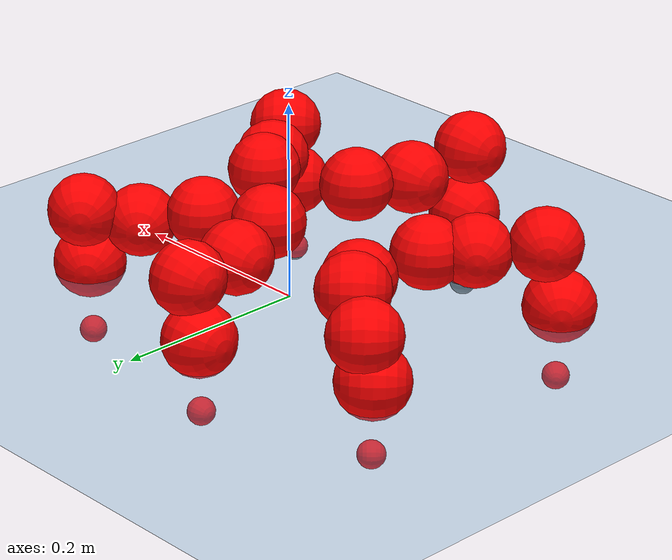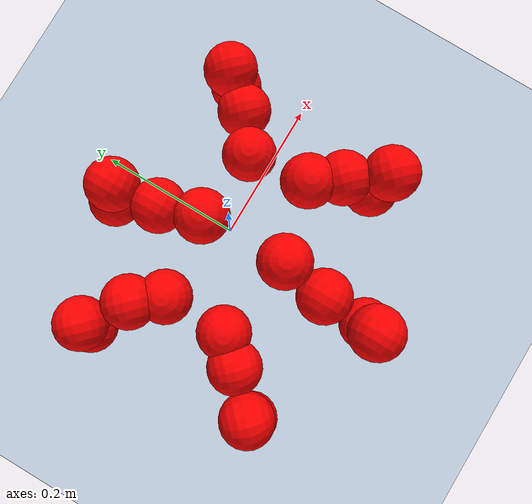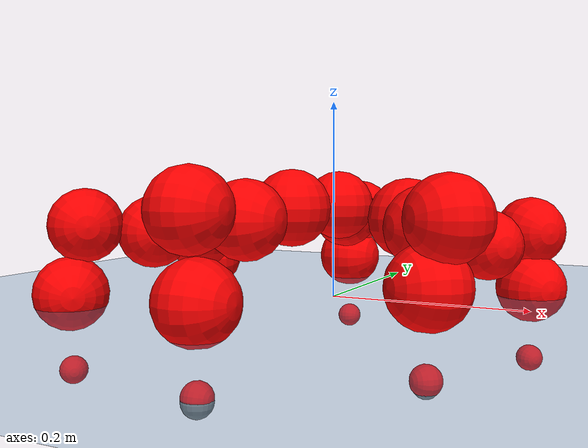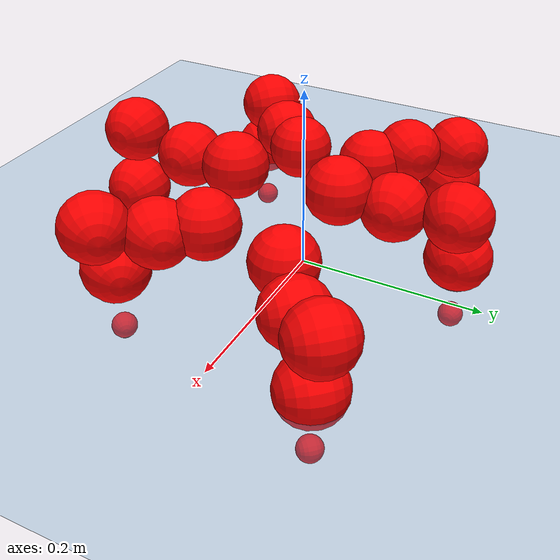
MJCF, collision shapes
<mujoco model="Golem">
  <compiler angle="radian" assetdir="assets" balanceinertia="true" inertiafromgeom="false"/>

  <option timestep="0.005" density="1.2" viscosity="2e-05"/>

  <size nkey="1"/>

  <visual>
    <quality shadowsize="8192"/>
    <map shadowclip="0.5"/>
  </visual>

  <default>
    <default class="/">
      <joint armature="0.01" damping="0.01" frictionloss="0.01"/>
      <geom contype="0" conaffinity="0" group="1" solref="-1000 -80"/>
      <site size="0.01 0.005 0.005" group="5"/>
      <general forcelimited="true" biastype="affine" gainprm="25" biasprm="0 -25 -0.5"/>
      <default class="visual">
        <geom type="mesh" group="2"/>
      </default>
      <default class="collision">
        <geom group="3"/>
      </default>
      <default class="foot">
        <geom size="0.01 0 0" condim="6" group="4" priority="1" solimp="0.015 1 0.01"/>
      </default>
      <default class="reward_collision_sphere">
        <geom group="5" rgba="1 0 0 1"/>
      </default>
    </default>
  </default>

  <asset>
    <texture type="skybox" colorspace="auto" name="//unnamed_texture_0" builtin="gradient" rgb1="0.95 0.95 0.95" rgb2="0.95 0.95 0.95" width="100" height="600"/>
    <texture type="2d" colorspace="auto" name="texplane" builtin="checker" rgb1="0.345 0.575 0.748" rgb2="0.345 0.575 0.748" markrgb="1 1 1" width="512" height="512"/>
    <material name="MatPlane" class="/" texture="texplane" texuniform="true" texrepeat="2 2" specular="0.9"/>
    <mesh name="body" class="/" file="body.stl" scale="0.001 0.001 0.001"/>
    <mesh name="coxa" class="/" file="coxa.stl" scale="0.001 0.001 0.001"/>
    <mesh name="femur" class="/" file="femur.stl" scale="0.001 0.001 0.001"/>
    <mesh name="tibia" class="/" file="tibia.stl" scale="0.001 0.001 0.001"/>
    <mesh name="tarsus" class="/" file="tarsus.stl" scale="0.001 0.001 0.001"/>
  </asset>

  <worldbody>
    <geom name="floor" class="/" size="100 100 0.125" type="plane" group="0" material="MatPlane"/>
    <light name="toplight_shadow" class="/" pos="0 0 5" dir="0.0990148 0.0990148 -0.990148" type="directional" ambient="0.04 0.04 0.04" diffuse="0.55 0.55 0.55" specular="0.12 0.12 0.12"/>
    <light name="toplight_fill" class="/" pos="0 0 5" dir="0.0990148 0.0990148 -0.990148" type="directional" castshadow="false" ambient="0.04 0.04 0.04" diffuse="0.3 0.3 0.3" specular="0.08 0.08 0.08"/>
    <body name="trunk" pos="-0.00874766 -0.0153869 -0.0112537" quat="0.999999 -0.000950233 -0.000175969 0.000498239">
      <inertial pos="0.00970112 -0.00177796 0.0169789" quat="0.999819 -0.00667076 0.00780891 0.0160273" mass="1.88128" diaginertia="0.00154831 0.000629191 0.0580327"/>
      <joint name="//unnamed_joint_0" type="free"/>
      <geom name="//unnamed_geom_1" class="/" pos="0 0 0.0910673" quat="1 0 0 0" type="mesh" rgba="0.9 0.9 0.9 1" mesh="body"/>
      <site name="imu" class="/" pos="0.113151 0.0594514 0.164156" size="0.00907551"/>
      <camera name="track" class="/" pos="0 -1.2045 0" quat="0.707107 0.707107 0 0" mode="trackcom"/>
      <camera name="ego_camera" class="/" pos="0.090672 0 0.142293" quat="-0.5 -0.5 0.5 0.5"/>
      <body name="coxa_RR" pos="-0.127987 -0.064167 0.0790978" quat="0.380216 0.0054452 0.00410872 -0.924873">
        <inertial pos="0.00223332 0.0167092 -0.0162456" quat="0.998651 -0.0431786 0.00186877 -0.0287642" mass="0.126798" diaginertia="0.00172835 0.000900024 0.0585119"/>
        <joint name="coxa_joint_RR" class="/" pos="0 0 0" axis="0.00907323 -0.0143929 -0.999855" range="-3.40342 3.14009" armature="0.00853473" damping="0.0071516" frictionloss="0.011394"/>
        <geom name="//unnamed_geom_2" class="/" type="mesh" rgba="0.2 0.2 0.2 1" mesh="coxa"/>
        <geom name="//unnamed_geom_3" class="reward_collision_sphere" size="0.036302" pos="-0.0209243 0 0"/>
        <body name="femur_RR" pos="0.024889 0.00291501 0.00167561" quat="0.497533 -0.504424 0.495326 0.502663">
          <inertial pos="0.0133069 0.000390378 0.00654935" quat="0.999995 0.000348357 -0.00123138 -0.00300128" mass="0.142648" diaginertia="0.00156981 0.000742973 0.0550017"/>
          <joint name="femur_joint_RR" class="/" pos="0 0 0" axis="0.0137532 0.0025835 -0.999902" range="-2.89911 2.91927" armature="0.015396" damping="0.00655147" frictionloss="0.00893506"/>
          <geom name="//unnamed_geom_4" class="/" type="mesh" rgba="0.9 0.9 0.9 1" mesh="femur"/>
          <geom name="//unnamed_geom_5" class="reward_collision_sphere" size="0.036302"/>
          <body name="tibia_RR" pos="-0.00840872 -0.0659782 -0.0013025" quat="0.0002063 1 4.48538e-05 -0.000209291">
            <inertial pos="-0.0103004 5.7846e-05 -0.00643299" quat="0.998559 -0.0423074 -0.0235798 0.0231041" mass="0.15163" diaginertia="0.00147313 0.00057228 0.0397852"/>
            <joint name="tibia_joint_RR" class="/" pos="0 0 0" axis="-0.00703736 0.0635559 0.997953" stiffness="0.0472531" range="-2.94141 3.49808" armature="0.0119555" damping="0" frictionloss="0.00668004"/>
            <geom name="//unnamed_geom_6" class="/" type="mesh" rgba="0.2 0.2 0.2 1" mesh="tibia"/>
            <geom name="//unnamed_geom_7" class="reward_collision_sphere" size="0.036302"/>
            <body name="tarsus_RR" pos="0.0655615 0.0153111 -0.00386912" quat="0.999998 -0.000571395 0.000881845 -0.00191812">
              <inertial pos="0.0282923 -0.0178736 0.0142772" quat="0.534264 0.470798 0.510824 0.481632" mass="0.127779" diaginertia="0.0015122 0.000524369 0.0467879"/>
              <joint name="tarsus_joint_RR" class="/" pos="0 0 0" axis="-0.0501492 0.0172436 0.998593" stiffness="0.0247213" range="-3.47021 3.11789" armature="0.00527713" damping="0.0575321" frictionloss="0.00436366"/>
              <geom name="//unnamed_geom_8" class="/" type="mesh" rgba="0.9 0.9 0.9 1" mesh="tarsus"/>
              <geom name="foot_1" class="foot" size="0.00598855" pos="0.0781174 0 0" quat="0 -0.707107 0 0.707107"/>
              <geom name="//unnamed_geom_10" class="reward_collision_sphere" size="0.036302"/>
              <geom name="//unnamed_geom_11" class="reward_collision_sphere" size="0.0136133" pos="0.0749787 0 0"/>
              <site name="foot_1" class="foot" pos="0.0781174 0 0" quat="0 -0.707107 0 0.707107" size="0.00907551"/>
            </body>
          </body>
        </body>
      </body>
      <body name="coxa_RM" pos="0.00380566 -0.0895718 0.106662" quat="0.707035 9.00349e-05 9.14067e-05 -0.707179">
        <inertial pos="0.00484414 -0.0098025 -0.00769342" quat="0.999915 0.0122128 0.00129919 -0.00435958" mass="0.156822" diaginertia="0.00151375 0.000748414 0.0530673"/>
        <joint name="coxa_joint_RM" class="/" pos="0 0 0" axis="0.0284463 0.0364708 -0.99893" stiffness="0.0793992" range="-3.01385 3.28544" armature="0.00915827" damping="0.019667" frictionloss="0.0170159"/>
        <geom name="//unnamed_geom_12" class="/" type="mesh" rgba="0.2 0.2 0.2 1" mesh="coxa"/>
        <geom name="//unnamed_geom_13" class="reward_collision_sphere" size="0.036302" pos="-0.0209243 0 0"/>
        <body name="femur_RM" pos="0.0440118 -0.011658 -0.00806766" quat="0.500247 -0.500732 0.501345 0.497669">
          <inertial pos="8.4125e-05 0.0107343 -0.0132979" quat="0.999442 -0.031861 -0.000545175 -0.00998339" mass="0.165004" diaginertia="0.00207639 0.000918625 0.0622474"/>
          <joint name="femur_joint_RM" class="/" pos="0 0 0" axis="0.0153631 0.0294262 -0.999449" range="-3.27617 3.34728" armature="0.0112929" damping="0.0699032" frictionloss="0.0103402"/>
          <geom name="//unnamed_geom_14" class="/" type="mesh" rgba="0.9 0.9 0.9 1" mesh="femur"/>
          <geom name="//unnamed_geom_15" class="reward_collision_sphere" size="0.036302"/>
          <body name="tibia_RM" pos="-0.0116341 -0.0758777 -0.00574155" quat="1.8188e-05 1 -2.73438e-05 3.07601e-06">
            <inertial pos="0.0167129 0.0157627 -0.00821721" quat="0.996421 -0.0221061 -0.0482553 0.0657868" mass="0.147191" diaginertia="0.0017178 0.000794968 0.070901"/>
            <joint name="tibia_joint_RM" class="/" pos="0 0 0" axis="0.000304803 -6.56764e-05 1" stiffness="0.000727051" range="-3.2032 2.94054" armature="0.00388165" damping="0" frictionloss="0.00404775"/>
            <geom name="//unnamed_geom_16" class="/" type="mesh" rgba="0.2 0.2 0.2 1" mesh="tibia"/>
            <geom name="//unnamed_geom_17" class="reward_collision_sphere" size="0.036302"/>
            <body name="tarsus_RM" pos="0.0721218 0.000175412 -0.00691555" quat="0.999994 0.00115816 0.00253391 0.00199409">
              <inertial pos="0.0457203 -0.00360478 0.00590082" quat="0.493341 0.489851 0.499264 0.517104" mass="0.126127" diaginertia="0.00124626 0.000720306 0.0497434"/>
              <joint name="tarsus_joint_RM" class="/" pos="0 0 0" axis="-0.0170061 -0.0290138 0.999434" stiffness="0.0474215" range="-3.1523 3.19027" armature="0.0168573" damping="0.00928551" frictionloss="0.00703817"/>
              <geom name="//unnamed_geom_18" class="/" type="mesh" rgba="0.9 0.9 0.9 1" mesh="tarsus"/>
              <geom name="foot_2" class="foot" size="0.0137056" pos="0.0781174 0 0" quat="0 -0.707107 0 0.707107"/>
              <geom name="//unnamed_geom_20" class="reward_collision_sphere" size="0.036302"/>
              <geom name="//unnamed_geom_21" class="reward_collision_sphere" size="0.0136133" pos="0.0749787 0 0"/>
              <site name="foot_2" class="foot" pos="0.0781174 0 0" quat="0 -0.707107 0 0.707107" size="0.00907551"/>
            </body>
          </body>
        </body>
      </body>
      <body name="coxa_RF" pos="0.122775 -0.0569903 0.0984151" quat="0.923872 -5.40679e-05 5.36031e-05 -0.382701">
        <inertial pos="-0.0145256 0.000655397 0.0015556" quat="0.999705 -0.0170376 -0.00347023 0.0169539" mass="0.151388" diaginertia="0.00130186 0.000724597 0.068701"/>
        <joint name="coxa_joint_RF" class="/" pos="0 0 0" axis="-0.0264619 0.0105547 -0.999594" stiffness="0.0307077" range="-2.90975 3.23134" armature="0.0141187" damping="0.000361648" frictionloss="0.0108991"/>
        <geom name="//unnamed_geom_22" class="/" type="mesh" rgba="0.2 0.2 0.2 1" mesh="coxa"/>
        <geom name="//unnamed_geom_23" class="reward_collision_sphere" size="0.036302" pos="-0.0209243 0 0"/>
        <body name="femur_RF" pos="0.025452 -0.00643074 -0.00510383" quat="0.498926 -0.501099 0.499557 0.500415">
          <inertial pos="0.00306903 0.0057174 0.0136582" quat="0.999328 -0.0140096 0.0323326 -0.0101115" mass="0.183162" diaginertia="0.00195446 0.000656071 0.0570728"/>
          <joint name="femur_joint_RF" class="/" pos="0 0 0" axis="-0.00169564 0.00243354 -0.999996" stiffness="0.059694" range="-3.43354 3.16038" armature="0.00386954" damping="0.0609072" frictionloss="0.00523228"/>
          <geom name="//unnamed_geom_24" class="/" type="mesh" rgba="0.9 0.9 0.9 1" mesh="femur"/>
          <geom name="//unnamed_geom_25" class="reward_collision_sphere" size="0.036302"/>
          <body name="tibia_RF" pos="-0.0107379 -0.0575009 -0.0107907" quat="-0.000225617 1 0.00014015 -1.36063e-05">
            <inertial pos="-0.0083544 -0.0118746 -0.0023953" quat="0.999316 -0.0364937 0.00393926 0.00440353" mass="0.146463" diaginertia="0.00126932 0.000889636 0.0477494"/>
            <joint name="tibia_joint_RF" class="/" pos="0 0 0" axis="0.0252722 -0.0114368 0.999615" range="-3.22484 3.26414" armature="0.005338" damping="0.0372368" frictionloss="0.0153369"/>
            <geom name="//unnamed_geom_26" class="/" type="mesh" rgba="0.2 0.2 0.2 1" mesh="tibia"/>
            <geom name="//unnamed_geom_27" class="reward_collision_sphere" size="0.036302"/>
            <body name="tarsus_RF" pos="0.0552158 -0.0157426 0.00822499" quat="0.999968 -0.000309574 -0.00635014 -0.004955">
              <inertial pos="0.0429553 0.0164233 0.00642414" quat="0.549322 0.508898 0.42835 0.50575" mass="0.182393" diaginertia="0.00138197 0.00100359 0.0605977"/>
              <joint name="tarsus_joint_RF" class="/" pos="0 0 0" axis="-0.0611052 -0.0218993 0.997891" stiffness="0.0592474" range="-3.46399 3.22602" armature="0.0015731" damping="0.00556843" frictionloss="0.00896082"/>
              <geom name="//unnamed_geom_28" class="/" type="mesh" rgba="0.9 0.9 0.9 1" mesh="tarsus"/>
              <geom name="foot_3" class="foot" size="0.011526" pos="0.0781174 0 0" quat="0 -0.707107 0 0.707107"/>
              <geom name="//unnamed_geom_30" class="reward_collision_sphere" size="0.036302"/>
              <geom name="//unnamed_geom_31" class="reward_collision_sphere" size="0.0136133" pos="0.0749787 0 0"/>
              <site name="foot_3" class="foot" pos="0.0781174 0 0" quat="0 -0.707107 0 0.707107" size="0.00907551"/>
            </body>
          </body>
        </body>
      </body>
      <body name="coxa_LR" pos="-0.127458 0.0539646 0.0817534" quat="0.380134 -0.00312037 -0.0017908 0.924925">
        <inertial pos="0.00754311 0.0169109 -0.00729503" quat="0.997652 0.0175297 -0.0656528 0.00848874" mass="0.186496" diaginertia="0.00186372 0.000765638 0.0683668"/>
        <joint name="coxa_joint_LR" class="/" pos="0 0 0" axis="-0.0493822 -0.0048335 -0.998768" stiffness="0.0622644" range="-2.94667 2.81209" armature="0.0161723" damping="0" frictionloss="0.0114485"/>
        <geom name="//unnamed_geom_32" class="/" type="mesh" rgba="0.2 0.2 0.2 1" mesh="coxa"/>
        <geom name="//unnamed_geom_33" class="reward_collision_sphere" size="0.036302" pos="-0.0209243 0 0"/>
        <body name="femur_LR" pos="0.0239682 -0.005264 0.00916926" quat="0.497991 -0.496703 0.505083 0.500183">
          <inertial pos="-0.00762726 -0.00114434 -0.0061878" quat="0.996698 0.00817296 0.0478273 -0.0651131" mass="0.181738" diaginertia="0.00168644 0.000837864 0.0484292"/>
          <joint name="femur_joint_LR" class="/" pos="0 0 0" axis="-0.050672 -0.00422522 0.998706" stiffness="0.0706766" range="-3.48775 3.41356" armature="0.00459428" damping="0.0423988" frictionloss="0.011135"/>
          <geom name="//unnamed_geom_34" class="/" type="mesh" rgba="0.9 0.9 0.9 1" mesh="femur"/>
          <geom name="//unnamed_geom_35" class="reward_collision_sphere" size="0.036302"/>
          <body name="tibia_LR" pos="0.0115001 -0.0690763 0.0118765" quat="0.00395044 0.999986 0.000779512 0.00342092">
            <inertial pos="0.00404894 0.0160672 -0.0118584" quat="0.998434 -0.0250577 0.0197629 -0.045943" mass="0.145538" diaginertia="0.00136013 0.000676652 0.0563171"/>
            <joint name="tibia_joint_LR" class="/" pos="0 0 0" axis="-0.000500777 -0.0136572 -0.999907" range="-2.86362 2.92121" armature="0.0135485" damping="0.0792248" frictionloss="0.00384521"/>
            <geom name="//unnamed_geom_36" class="/" type="mesh" rgba="0.2 0.2 0.2 1" mesh="tibia"/>
            <geom name="//unnamed_geom_37" class="reward_collision_sphere" size="0.036302"/>
            <body name="tarsus_LR" pos="0.0452093 0.000273679 -0.00770782" quat="0.999973 -0.00324177 -0.00522765 0.00402763">
              <inertial pos="0.0408039 0.00511419 0.000292892" quat="0.513505 0.449072 0.525999 0.507909" mass="0.139118" diaginertia="0.00132773 0.00071008 0.0464949"/>
              <joint name="tarsus_joint_LR" class="/" pos="0 0 0" axis="0.0128238 -0.0143733 -0.999814" stiffness="0.0716676" range="-2.842 3.10493" armature="0.0091777" damping="0.04822" frictionloss="0.0160215"/>
              <geom name="//unnamed_geom_38" class="/" type="mesh" rgba="0.9 0.9 0.9 1" mesh="tarsus"/>
              <geom name="foot_4" class="foot" size="0.00854964" pos="0.0781174 0 0" quat="0.707107 0 -0.707107 0"/>
              <geom name="//unnamed_geom_40" class="reward_collision_sphere" size="0.036302"/>
              <geom name="//unnamed_geom_41" class="reward_collision_sphere" size="0.0136133" pos="0.0749787 0 0"/>
              <site name="foot_4" class="foot" pos="0.0781174 0 0" quat="0.707107 0 -0.707107 0" size="0.00907551"/>
            </body>
          </body>
        </body>
      </body>
      <body name="coxa_LM" pos="-0.000494292 0.0711458 0.104869" quat="0.703603 -0.00102655 -0.00173174 0.71059">
        <inertial pos="0.0145532 0.00748176 0.0132917" quat="0.999993 -0.000109503 -0.00304205 0.00201304" mass="0.133831" diaginertia="0.00184597 0.000905658 0.0444932"/>
        <joint name="coxa_joint_LM" class="/" pos="0 0 0" axis="-0.0169102 -0.0203273 -0.99965" range="-3.15561 3.15184" armature="0.00234589" damping="0.0871797" frictionloss="0.014439"/>
        <geom name="//unnamed_geom_42" class="/" type="mesh" rgba="0.2 0.2 0.2 1" mesh="coxa"/>
        <geom name="//unnamed_geom_43" class="reward_collision_sphere" size="0.036302" pos="-0.0209243 0 0"/>
        <body name="femur_LM" pos="0.035079 0.0158133 -0.0136351" quat="0.498586 -0.500162 0.49968 0.501568">
          <inertial pos="-0.0135321 -0.0101729 -0.0153739" quat="0.999954 0.000431719 -0.00874488 0.00394898" mass="0.147501" diaginertia="0.00144463 0.00079397 0.0644558"/>
          <joint name="femur_joint_LM" class="/" pos="0 0 0" axis="0.0164841 -0.0360737 0.999213" stiffness="0.00878024" range="-3.23214 3.40745" armature="0.0042662" damping="0.0128001" frictionloss="0.00355523"/>
          <geom name="//unnamed_geom_44" class="/" type="mesh" rgba="0.9 0.9 0.9 1" mesh="femur"/>
          <geom name="//unnamed_geom_45" class="reward_collision_sphere" size="0.036302"/>
          <body name="tibia_LM" pos="-0.00234224 -0.0653099 0.00638157" quat="-0.00127083 0.999999 0.000408013 -0.000964103">
            <inertial pos="0.0111762 0.0165116 -0.017442" quat="0.996148 -0.0276903 -0.0144593 -0.0819398" mass="0.154546" diaginertia="0.00155932 0.000804458 0.0684363"/>
            <joint name="tibia_joint_LM" class="/" pos="0 0 0" axis="-0.0657288 0.00748369 -0.997809" stiffness="0.0859811" range="-3.09122 3.44602" armature="0.00490588" damping="0" frictionloss="0.00945232"/>
            <geom name="//unnamed_geom_46" class="/" type="mesh" rgba="0.2 0.2 0.2 1" mesh="tibia"/>
            <geom name="//unnamed_geom_47" class="reward_collision_sphere" size="0.036302"/>
            <body name="tarsus_LM" pos="0.0567629 0.00121279 -0.0151838" quat="0.999991 0.00100275 0.00139588 -0.00376398">
              <inertial pos="0.0516446 0.00711889 0.01433" quat="0.507063 0.471633 0.453023 0.561444" mass="0.137308" diaginertia="0.00194604 0.00103746 0.0752045"/>
              <joint name="tarsus_joint_LM" class="/" pos="0 0 0" axis="0.0495345 0.0550496 -0.997254" stiffness="0.0387654" range="-3.08212 3.43993" armature="0.0137017" damping="0" frictionloss="0.0087837"/>
              <geom name="//unnamed_geom_48" class="/" type="mesh" rgba="0.9 0.9 0.9 1" mesh="tarsus"/>
              <geom name="foot_5" class="foot" size="0.00902951" pos="0.0781174 0 0" quat="0.707107 0 -0.707107 0"/>
              <geom name="//unnamed_geom_50" class="reward_collision_sphere" size="0.036302"/>
              <geom name="//unnamed_geom_51" class="reward_collision_sphere" size="0.0136133" pos="0.0749787 0 0"/>
              <site name="foot_5" class="foot" pos="0.0781174 0 0" quat="0.707107 0 -0.707107 0" size="0.00907551"/>
            </body>
          </body>
        </body>
      </body>
      <body name="coxa_LF" pos="0.118449 0.0567147 0.0772963" quat="0.925351 -0.00540004 0.00420368 0.379049">
        <inertial pos="-0.00718856 0.00659943 -0.00850177" quat="0.996167 0.0460875 0.0670504 -0.0321049" mass="0.110907" diaginertia="0.00172963 0.000592982 0.0661056"/>
        <joint name="coxa_joint_LF" class="/" pos="0 0 0" axis="0.00252569 0.0388214 -0.999243" stiffness="0.0277858" range="-3.15616 3.15345" armature="0.00825892" damping="0.0530287" frictionloss="0.00652008"/>
        <geom name="//unnamed_geom_52" class="/" type="mesh" rgba="0.2 0.2 0.2 1" mesh="coxa"/>
        <geom name="//unnamed_geom_53" class="reward_collision_sphere" size="0.036302" pos="-0.0209243 0 0"/>
        <body name="femur_LF" pos="0.0416027 -0.00853373 -0.0115494" quat="0.49985 -0.499793 0.500038 0.500318">
          <inertial pos="-0.0149601 0.00781109 -0.0163134" quat="0.999163 0.0319987 0.0229261 0.0110845" mass="0.190974" diaginertia="0.00202317 0.000769398 0.062491"/>
          <joint name="femur_joint_LF" class="/" pos="0 0 0" axis="-0.0567402 0.0072717 0.998362" range="-3.12229 2.7847" armature="0.00280246" damping="0.0560332" frictionloss="0.00771408"/>
          <geom name="//unnamed_geom_54" class="/" type="mesh" rgba="0.9 0.9 0.9 1" mesh="femur"/>
          <geom name="//unnamed_geom_55" class="reward_collision_sphere" size="0.036302"/>
          <body name="tibia_LF" pos="-0.0131471 -0.0544756 0.00547434" quat="-0.00348817 0.999982 -0.00207114 0.00443568">
            <inertial pos="0.00599951 -0.00666543 0.000720924" quat="0.999951 0.004142 -0.000557278 0.00893648" mass="0.150939" diaginertia="0.00172216 0.00077243 0.0586293"/>
            <joint name="tibia_joint_LF" class="/" pos="0 0 0" axis="0.0387236 -0.0573883 -0.997601" stiffness="0.00422846" range="-2.96581 2.89164" armature="0.0163502" damping="0.0220352" frictionloss="0.00561579"/>
            <geom name="//unnamed_geom_56" class="/" type="mesh" rgba="0.2 0.2 0.2 1" mesh="tibia"/>
            <geom name="//unnamed_geom_57" class="reward_collision_sphere" size="0.036302"/>
            <body name="tarsus_LF" pos="0.0583754 -0.00234398 0.00714325" quat="0.99999 0.00275288 -0.0033988 -0.000190678">
              <inertial pos="0.0557374 -0.00826571 0.000639905" quat="0.502085 0.500055 0.500048 0.497803" mass="0.188126" diaginertia="0.0019947 0.00096569 0.062491"/>
              <joint name="tarsus_joint_LF" class="/" pos="0 0 0" axis="0.0223873 0.0438386 -0.998788" stiffness="0.00742307" range="-2.82479 2.8154" armature="0.00827639" damping="0.0559998" frictionloss="0.01055"/>
              <geom name="//unnamed_geom_58" class="/" type="mesh" rgba="0.9 0.9 0.9 1" mesh="tarsus"/>
              <geom name="foot_6" class="foot" size="0.00987591" pos="0.0781174 0 0" quat="0.707107 0 -0.707107 0"/>
              <geom name="//unnamed_geom_60" class="reward_collision_sphere" size="0.036302"/>
              <geom name="//unnamed_geom_61" class="reward_collision_sphere" size="0.0136133" pos="0.0749787 0 0"/>
              <site name="foot_6" class="foot" pos="0.0781174 0 0" quat="0.707107 0 -0.707107 0" size="0.00907551"/>
            </body>
          </body>
        </body>
      </body>
    </body>
  </worldbody>

  <contact>
    <pair class="/" geom1="floor" geom2="foot_1" name="//unnamed_contact_0"/>
    <pair class="/" geom1="floor" geom2="foot_2" name="//unnamed_contact_1"/>
    <pair class="/" geom1="floor" geom2="foot_3" name="//unnamed_contact_2"/>
    <pair class="/" geom1="floor" geom2="foot_4" name="//unnamed_contact_3"/>
    <pair class="/" geom1="floor" geom2="foot_5" name="//unnamed_contact_4"/>
    <pair class="/" geom1="floor" geom2="foot_6" name="//unnamed_contact_5"/>
  </contact>

  <actuator>
    <general name="coxa_joint_RR" class="/" joint="coxa_joint_RR" forcerange="-4.35809 4.35809" gainprm="21.8709" biasprm="0 -21.8709 -0.472937"/>
    <general name="femur_joint_RR" class="/" joint="femur_joint_RR" forcerange="-9.16256 9.16256" gainprm="21.8709" biasprm="0 -21.8709 -0.472937"/>
    <general name="tibia_joint_RR" class="/" joint="tibia_joint_RR" forcerange="-10.7608 10.7608" gainprm="21.8709" biasprm="0 -21.8709 -0.472937"/>
    <general name="tarsus_joint_RR" class="/" joint="tarsus_joint_RR" forcerange="-9.55289 9.55289" gainprm="21.8709" biasprm="0 -21.8709 -0.472937"/>
    <general name="coxa_joint_RM" class="/" joint="coxa_joint_RM" forcerange="-6.47624 6.47624" gainprm="21.8709" biasprm="0 -21.8709 -0.472937"/>
    <general name="femur_joint_RM" class="/" joint="femur_joint_RM" forcerange="-5.8828 5.8828" gainprm="21.8709" biasprm="0 -21.8709 -0.472937"/>
    <general name="tibia_joint_RM" class="/" joint="tibia_joint_RM" forcerange="-10.9837 10.9837" gainprm="21.8709" biasprm="0 -21.8709 -0.472937"/>
    <general name="tarsus_joint_RM" class="/" joint="tarsus_joint_RM" forcerange="-8.47533 8.47533" gainprm="21.8709" biasprm="0 -21.8709 -0.472937"/>
    <general name="coxa_joint_RF" class="/" joint="coxa_joint_RF" forcerange="-7.41392 7.41392" gainprm="21.8709" biasprm="0 -21.8709 -0.472937"/>
    <general name="femur_joint_RF" class="/" joint="femur_joint_RF" forcerange="-2.26333 2.26333" gainprm="21.8709" biasprm="0 -21.8709 -0.472937"/>
    <general name="tibia_joint_RF" class="/" joint="tibia_joint_RF" forcerange="-4.09214 4.09214" gainprm="21.8709" biasprm="0 -21.8709 -0.472937"/>
    <general name="tarsus_joint_RF" class="/" joint="tarsus_joint_RF" forcerange="-2.28682 2.28682" gainprm="21.8709" biasprm="0 -21.8709 -0.472937"/>
    <general name="coxa_joint_LR" class="/" joint="coxa_joint_LR" forcerange="-10.1738 10.1738" gainprm="21.8709" biasprm="0 -21.8709 -0.472937"/>
    <general name="femur_joint_LR" class="/" joint="femur_joint_LR" forcerange="-4.50214 4.50214" gainprm="21.8709" biasprm="0 -21.8709 -0.472937"/>
    <general name="tibia_joint_LR" class="/" joint="tibia_joint_LR" forcerange="-3.85201 3.85201" gainprm="21.8709" biasprm="0 -21.8709 -0.472937"/>
    <general name="tarsus_joint_LR" class="/" joint="tarsus_joint_LR" forcerange="-6.95488 6.95488" gainprm="21.8709" biasprm="0 -21.8709 -0.472937"/>
    <general name="coxa_joint_LM" class="/" joint="coxa_joint_LM" forcerange="-4.17071 4.17071" gainprm="21.8709" biasprm="0 -21.8709 -0.472937"/>
    <general name="femur_joint_LM" class="/" joint="femur_joint_LM" forcerange="-6.61031 6.61031" gainprm="21.8709" biasprm="0 -21.8709 -0.472937"/>
    <general name="tibia_joint_LM" class="/" joint="tibia_joint_LM" forcerange="-10.5986 10.5986" gainprm="21.8709" biasprm="0 -21.8709 -0.472937"/>
    <general name="tarsus_joint_LM" class="/" joint="tarsus_joint_LM" forcerange="-9.74526 9.74526" gainprm="21.8709" biasprm="0 -21.8709 -0.472937"/>
    <general name="coxa_joint_LF" class="/" joint="coxa_joint_LF" forcerange="-4.58816 4.58816" gainprm="21.8709" biasprm="0 -21.8709 -0.472937"/>
    <general name="femur_joint_LF" class="/" joint="femur_joint_LF" forcerange="-10.2646 10.2646" gainprm="21.8709" biasprm="0 -21.8709 -0.472937"/>
    <general name="tibia_joint_LF" class="/" joint="tibia_joint_LF" forcerange="-6.1179 6.1179" gainprm="21.8709" biasprm="0 -21.8709 -0.472937"/>
    <general name="tarsus_joint_LF" class="/" joint="tarsus_joint_LF" forcerange="-6.45324 6.45324" gainprm="21.8709" biasprm="0 -21.8709 -0.472937"/>
  </actuator>

  <sensor>
    <gyro site="imu" name="imu_angular_velocity"/>
    <velocimeter site="imu" name="imu_linear_velocity"/>
    <framelinvel objtype="site" objname="foot_1" name="foot_1_global_linear_velocity"/>
    <framelinvel objtype="site" objname="foot_2" name="foot_2_global_linear_velocity"/>
    <framelinvel objtype="site" objname="foot_3" name="foot_3_global_linear_velocity"/>
    <framelinvel objtype="site" objname="foot_4" name="foot_4_global_linear_velocity"/>
    <framelinvel objtype="site" objname="foot_5" name="foot_5_global_linear_velocity"/>
    <framelinvel objtype="site" objname="foot_6" name="foot_6_global_linear_velocity"/>
  </sensor>

  <keyframe>
    <key name="home" qpos="0 0 0.1457 1 0 0 0 0 0 0 0 0 0 0 0 0 0 0 0 0 0 0 0 0 0 0 0 0 0 0 0"/>
  </keyframe>
</mujoco>
